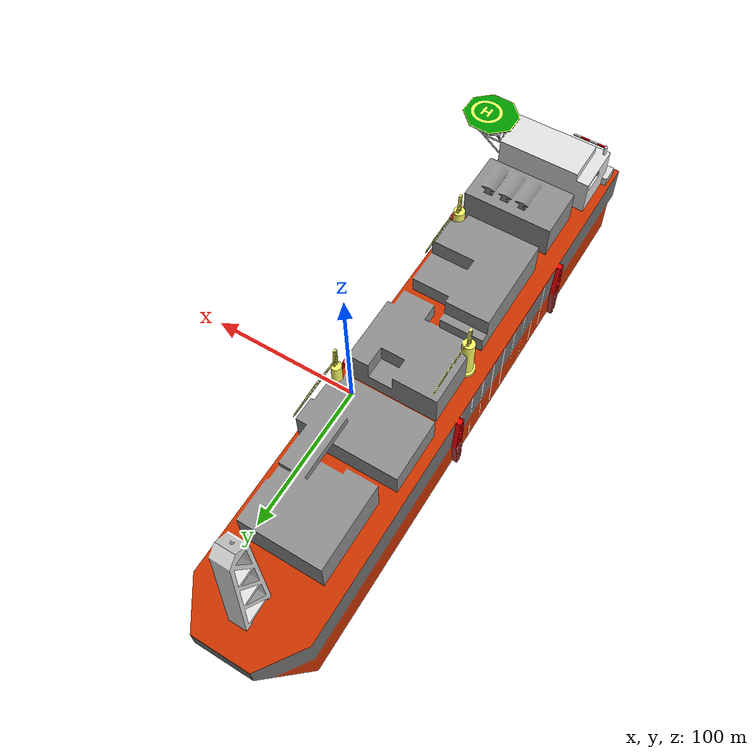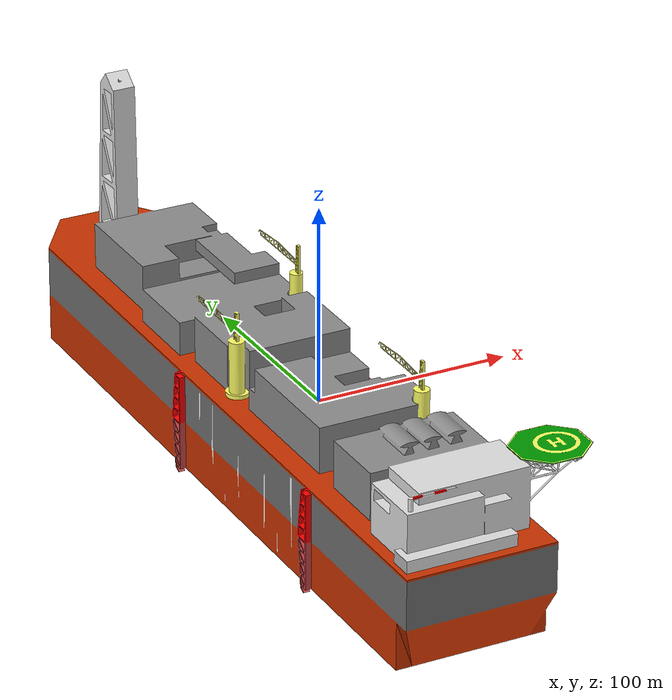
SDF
<?xml version="1.0" ?>
<sdf version="1.5">
  <model name="replicante">
    <link name="link">
      <pose>0 0 0.065 0 0 0</pose>
      <inertial>
        <mass>1000</mass>
	<inertia>
          <ixx>17000000</ixx>
          <ixy>0</ixy>
          <ixz>0</ixz>
          <iyy>17000000</iyy>
          <iyz>0</iyz>
          <izz>17000000</izz>
	</inertia>
      </inertial>

      <collision name="collision">
        <geometry>
          <mesh>
            <uri>model://replicante/meshes/replicante9.dae</uri>
          </mesh>
        </geometry>
      </collision>

      <visual name="visual">
        <geometry>
          <mesh>
            <uri>model://replicante/meshes/replicante9.dae</uri>
          </mesh>
        </geometry>
      </visual>

    </link>

  </model>
</sdf>
